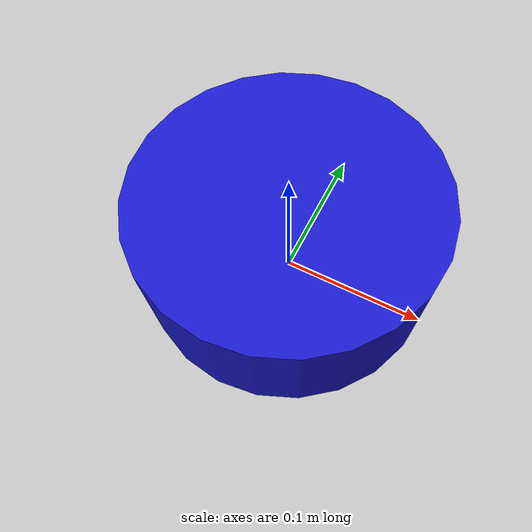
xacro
<?xml version="1.0"?>
<robot xmlns:xacro="http://www.ros.org/wiki/xacro">

  <!-- 連結 (Links) -->
  <link name="base_footprint"/>

  <link name="base_link">
    <visual>
      <geometry><cylinder radius="0.1" length="0.08"/></geometry>
      <material name="blue"><color rgba="0.1 0.1 0.8 1"/></material>
    </visual>
    <collision><geometry><cylinder radius="0.1" length="0.08"/></geometry></collision>
    <inertial>
        <mass value="5.0"/>
        <inertia ixx="0.1" ixy="0.0" ixz="0.0" iyy="0.1" iyz="0.0" izz="0.1"/>
    </inertial>
  </link>

  <!-- ... (省略左右輪子和關節的定義，可以參考 TurtleBot3 的結構) ... -->

  <!-- 關節 (Joints) -->
  <joint name="base_joint" type="fixed">
    <parent link="base_footprint"/>
    <child link="base_link"/>
    <origin xyz="0 0 0.05" rpy="0 0 0"/>
  </joint>

</robot>
